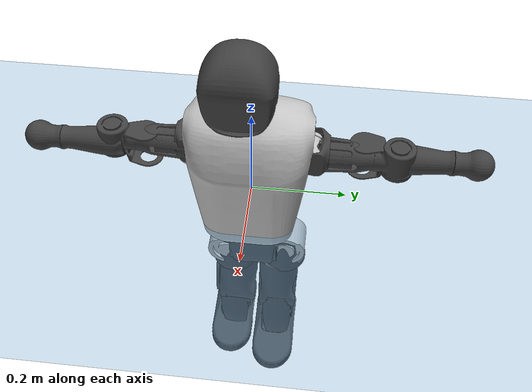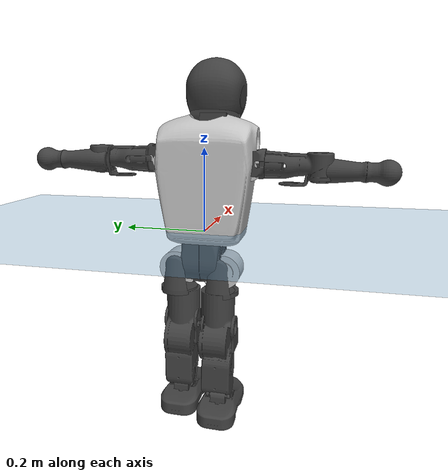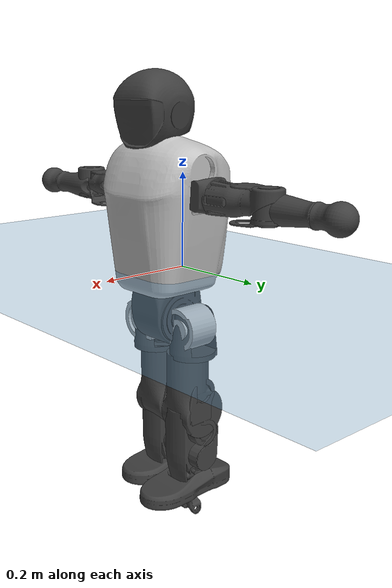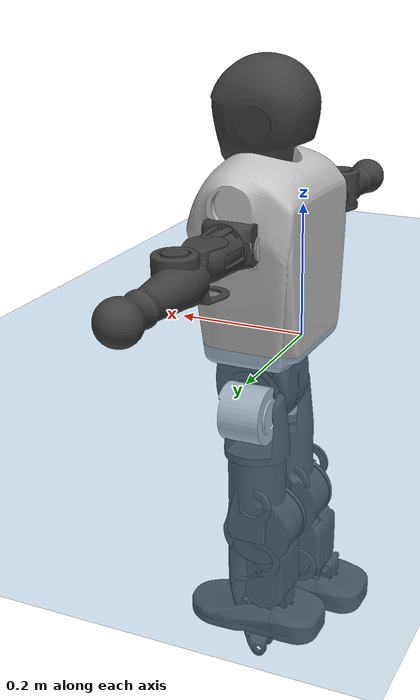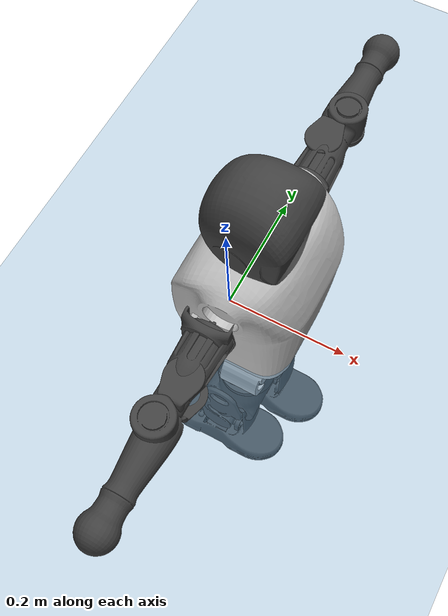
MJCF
<mujoco model="T1">
  <compiler angle="radian" assetdir="assets" balanceinertia="true" inertiafromgeom="false"/>

  <option timestep="0.005" density="1.2" viscosity="2e-05"/>

  <size nkey="1"/>

  <visual>
    <quality shadowsize="8192"/>
    <map shadowclip="0.5"/>
  </visual>

  <default>
    <default class="/">
      <joint armature="0.01" damping="0.01" frictionloss="0.1"/>
      <geom contype="0" conaffinity="0" group="1" solref="-1000 -80"/>
      <site size="0.01 0.005 0.005" group="5"/>
      <general forcelimited="true" biastype="affine" gainprm="25" biasprm="0 -25 -0.6"/>
      <default class="t1">
        <geom rgba="0.25 0.25 0.25 1"/>
        <default class="visual">
          <geom type="mesh" group="2"/>
        </default>
        <default class="collision">
          <geom group="3"/>
        </default>
        <default class="foot">
          <geom size="0.1115 0.05 0.015" type="box" condim="6" group="4" priority="1" solimp="0.015 1 0.015"/>
        </default>
        <default class="reward_collision_sphere">
          <geom group="5" rgba="1 0 0 1"/>
        </default>
      </default>
    </default>
  </default>

  <asset>
    <texture type="skybox" colorspace="auto" name="//unnamed_texture_0" builtin="gradient" rgb1="0.95 0.95 0.95" rgb2="0.95 0.95 0.95" width="100" height="600"/>
    <texture type="2d" colorspace="auto" name="texplane" builtin="checker" rgb1="0.345 0.575 0.748" rgb2="0.345 0.575 0.748" markrgb="1 1 1" width="512" height="512"/>
    <material name="MatPlane" class="/" texture="texplane" texuniform="true" texrepeat="2 2" specular="0.9"/>
    <mesh name="Trunk" class="/" file="Trunk.stl"/>
    <mesh name="H1" class="/" file="H1.stl"/>
    <mesh name="H2" class="/" file="H2.stl"/>
    <mesh name="AL1" class="/" file="AL1.stl"/>
    <mesh name="AL2" class="/" file="AL2.stl"/>
    <mesh name="AL3" class="/" file="AL3.stl"/>
    <mesh name="left_hand_link" class="/" file="left_hand_link.stl"/>
    <mesh name="AR1" class="/" file="AR1.stl"/>
    <mesh name="AR2" class="/" file="AR2.stl"/>
    <mesh name="AR3" class="/" file="AR3.stl"/>
    <mesh name="right_hand_link" class="/" file="right_hand_link.stl"/>
    <mesh name="Waist" class="/" file="Waist.stl"/>
    <mesh name="Hip_Pitch_Left" class="/" file="Hip_Pitch_Left.stl"/>
    <mesh name="Hip_Roll_Left" class="/" file="Hip_Roll_Left.stl"/>
    <mesh name="Hip_Yaw_Left" class="/" file="Hip_Yaw_Left.stl"/>
    <mesh name="Shank_Left" class="/" file="Shank_Left.stl"/>
    <mesh name="Ankle_Cross_Left" class="/" file="Ankle_Cross_Left.stl"/>
    <mesh name="left_foot_link" class="/" file="left_foot_link.stl"/>
    <mesh name="Hip_Pitch_Right" class="/" file="Hip_Pitch_Right.stl"/>
    <mesh name="Hip_Roll_Right" class="/" file="Hip_Roll_Right.stl"/>
    <mesh name="Hip_Yaw_Right" class="/" file="Hip_Yaw_Right.stl"/>
    <mesh name="Shank_Right" class="/" file="Shank_Right.stl"/>
    <mesh name="Ankle_Cross_Right" class="/" file="Ankle_Cross_Right.stl"/>
    <mesh name="right_foot_link" class="/" file="right_foot_link.stl"/>
  </asset>

  <worldbody>
    <geom name="floor" class="/" size="100 100 0.125" type="plane" group="0" material="MatPlane"/>
    <light name="toplight_shadow" class="/" pos="0 0 5" dir="0.0990148 0.0990148 -0.990148" type="directional" ambient="0.04 0.04 0.04" diffuse="0.55 0.55 0.55" specular="0.12 0.12 0.12"/>
    <light name="toplight_fill" class="/" pos="0 0 5" dir="0.0990148 0.0990148 -0.990148" type="directional" castshadow="false" ambient="0.04 0.04 0.04" diffuse="0.3 0.3 0.3" specular="0.08 0.08 0.08"/>
    <body name="trunk" childclass="t1" pos="-0.00131278 0.00492094 -0.00160434" quat="0.999986 0.00280238 0.00284738 -0.00351134">
      <inertial pos="0.0533228 0.00848592 0.0789622" quat="0.999956 -0.00231474 -0.00767151 -0.00478562" mass="4.65093" diaginertia="0.0355304 0.00634589 0.0115348"/>
      <joint name="//unnamed_joint_0" type="free" armature="0" damping="0" frictionloss="0"/>
      <geom name="//unnamed_geom_1" class="visual" rgba="0.76 0.76 0.76 1" mesh="Trunk"/>
      <geom name="//unnamed_geom_2" class="collision" size="0.0532407 0.0709876 0.106481" pos="0.0493943 0 0.0849727" type="box"/>
      <geom name="//unnamed_geom_3" class="reward_collision_sphere" size="0.0816358" pos="0.0493943 0 0.0708106"/>
      <geom name="//unnamed_geom_4" class="reward_collision_sphere" size="0.0106481" pos="0.0493943 0.0508542 0"/>
      <geom name="//unnamed_geom_5" class="reward_collision_sphere" size="0.0106481" pos="0.0493943 -0.0508542 0"/>
      <geom name="//unnamed_geom_6" class="reward_collision_sphere" size="0.0106481" pos="0.0493943 0.0640165 0.127459"/>
      <geom name="//unnamed_geom_7" class="reward_collision_sphere" size="0.0106481" pos="0.0493943 -0.0640165 0.127459"/>
      <site name="imu" pos="-0.0356879 -0.00656895 0.035839" size="0.00709876"/>
      <camera name="track" pos="0 -1.19657 0" quat="0.707107 0.707107 0 0" mode="trackcom"/>
      <camera name="ego_camera" pos="0.100435 0 0.297405" quat="-0.5 -0.5 0.5 0.5"/>
      <body name="H1" pos="0.0544074 -0.00465515 0.170293" quat="0.999998 0.00144223 -0.00060864 -0.00105619">
        <inertial pos="0.00492918 -0.0123013 0.0362294" quat="0.789658 0.0147692 0.0168167 0.613139" mass="0.166443" diaginertia="9.63051e-05 1.90449e-05 3.35169e-05"/>
        <joint name="AAHead_yaw" pos="0 0 0" axis="-0.049501 0.0172982 0.998624" range="-1.52886 1.58125" armature="0.00918994" damping="0.00395882" frictionloss="0.0665958"/>
        <geom name="//unnamed_geom_8" class="visual" mesh="H1"/>
        <body name="H2" pos="-0.00717544 -0.0107905 0.0479421" quat="1 -5.36454e-05 -0.000181463 -1.52688e-05">
          <inertial pos="0.00190566 -0.00925134 0.0728324" quat="0.988519 0.105106 -0.0735887 -0.0797973" mass="0.226455" diaginertia="0.000671297 0.000141676 0.000305894"/>
          <joint name="Head_pitch" pos="0 0 0" axis="-0.0155464 -0.999823 0.0106247" range="-1.24898 0.344244" armature="0.0109149" damping="0.00585058" frictionloss="0.0260484"/>
          <geom name="//unnamed_geom_9" class="visual" mesh="H2"/>
          <geom name="//unnamed_geom_10" class="collision" size="0.0567901" pos="0.00823238 0 0.0778917"/>
          <geom name="//unnamed_geom_11" class="reward_collision_sphere" size="0.0638889" pos="0.0164648 0 0.0708106"/>
        </body>
      </body>
      <body name="AL1" pos="0.0518473 0.0655833 0.166257" quat="1 -5.97886e-05 0.00041873 -2.61226e-05">
        <inertial pos="0.0103763 0.0274691 0.000803594" quat="0.506023 0.49367 -0.505287 0.494889" mass="0.18675" diaginertia="0.000530002 9.92259e-05 5.75455e-05"/>
        <joint name="Left_Shoulder_Pitch" pos="0 0 0" axis="0.00771291 0.998472 -0.0547157" range="-3.26199 1.32077" armature="0.00739304" damping="0.00872915" frictionloss="0.0763276"/>
        <geom name="//unnamed_geom_12" class="visual" rgba="0.76 0.76 0.76 1" mesh="AL1"/>
        <body name="AL2" pos="0.000964062 0.0303148 0.00718081" quat="1 -4.13593e-05 4.84553e-05 4.37255e-05">
          <inertial pos="-0.00188769 0.0277832 0.00902494" quat="0.517164 0.489073 -0.472804 0.519427" mass="0.0565692" diaginertia="0.00014933 2.62981e-05 3.07031e-05"/>
          <joint name="Left_Shoulder_Roll" pos="0 0 0" axis="-0.999724 0.00585928 0.0227396" stiffness="0.0028216" range="-1.60054 1.74114" armature="0.00620249" damping="0" frictionloss="0.0656201"/>
          <geom name="//unnamed_geom_13" class="visual" mesh="AL2"/>
          <body name="AL3" pos="0.000550204 0.0391543 -0.00370521" quat="1 -0.000222447 -0.000551752 -0.000463813">
            <inertial pos="0.0057582 0.0516554 0.00011323" quat="0.689804 0.722162 -0.0161566 0.0489054" mass="0.375068" diaginertia="0.00461274 0.000997864 0.000128938"/>
            <joint name="Left_Elbow_Pitch" pos="0 0 0" axis="0.00218651 -0.999992 -0.00348428" range="-2.22008 2.2744" armature="0.00729031" damping="0" frictionloss="0.0300345"/>
            <geom name="//unnamed_geom_14" class="visual" mesh="AL3"/>
            <geom name="//unnamed_geom_15" class="collision" size="0.0212963 0.0532407" pos="0 0.0299142 0" quat="0.707105 0.707108 0 0" type="cylinder"/>
            <geom name="//unnamed_geom_16" class="reward_collision_sphere" size="0.0255556"/>
            <body name="left_hand_link" pos="-0.00960262 0.0814478 -0.00649879" quat="1 0.000247345 0.000177627 -7.12983e-05">
              <inertial pos="-0.0098196 0.0726601 0.00968943" quat="0.71713 0.696932 -0.0025515 0.00187189" mass="0.116337" diaginertia="0.00309673 0.000586688 3.44084e-05"/>
              <joint name="Left_Elbow_Yaw" pos="0 0 0" axis="-0.000924086 0.00307366 0.999995" stiffness="0.0209202" range="-2.39034 0.0275824" armature="0.00452605" damping="0" frictionloss="0.0714488"/>
              <geom name="//unnamed_geom_17" class="visual" mesh="left_hand_link"/>
              <geom name="//unnamed_geom_18" class="collision" size="0.0212963 0.0621142" pos="0 0.077777 0" quat="0.707105 0.707108 0 0" type="cylinder"/>
              <geom name="//unnamed_geom_19" class="reward_collision_sphere" size="0.0354938"/>
              <geom name="//unnamed_geom_20" class="reward_collision_sphere" size="0.0248457" pos="0 0.0658113 0"/>
              <geom name="//unnamed_geom_21" class="reward_collision_sphere" size="0.0248457" pos="0 0.128631 0"/>
            </body>
          </body>
        </body>
      </body>
      <body name="AR1" pos="0.0429867 -0.063361 0.15647" quat="0.999981 0.0025703 -0.00342215 -0.00432664">
        <inertial pos="-0.00072256 -0.0231875 -0.00405226" quat="0.506384 0.4971 -0.497359 0.499099" mass="0.164535" diaginertia="0.000489548 8.44618e-05 4.57874e-05"/>
        <joint name="Right_Shoulder_Pitch" pos="0 0 0" axis="-0.00807857 -0.999967 0.000133235" stiffness="0.00245026" range="-1.35055 3.33385" armature="0.00805279" damping="0" frictionloss="0.0858654"/>
        <geom name="//unnamed_geom_22" class="visual" rgba="0.76 0.76 0.76 1" mesh="AR1"/>
        <body name="AR2" pos="-0.00377565 -0.0245879 0.0109651" quat="0.99999 0.00372927 0.00211142 -0.000854024">
          <inertial pos="0.00661103 -0.0260175 0.00274032" quat="0.516237 0.467467 -0.500078 0.51468" mass="0.0622249" diaginertia="0.000166111 2.69544e-05 3.36167e-05"/>
          <joint name="Right_Shoulder_Roll" pos="0 0 0" axis="-0.999292 0.00686493 0.0369852" stiffness="0.0325821" range="-1.65023 1.66487" armature="0.00707757" damping="0.0485096" frictionloss="0.0705264"/>
          <geom name="//unnamed_geom_23" class="visual" mesh="AR2"/>
          <body name="AR3" pos="0.00594001 -0.035236 -0.00367416" quat="0.999988 -0.00191945 -0.00395878 -0.00200909">
            <inertial pos="-0.0126216 -0.0495833 -0.00366764" quat="0.708534 0.705668 0.00324311 -0.00140946" mass="0.352499" diaginertia="0.00404814 0.000870813 0.000100224"/>
            <joint name="Right_Elbow_Pitch" pos="0 0 0" axis="-0.0273873 0.999625 -3.33482e-05" range="-2.20264 2.53019" armature="0.00701038" damping="0.00296525" frictionloss="0.0539667"/>
            <geom name="//unnamed_geom_24" class="visual" mesh="AR3"/>
            <geom name="//unnamed_geom_25" class="collision" size="0.0212963 0.0532407" pos="0 -0.0299142 0" quat="0.707105 0.707108 0 0" type="cylinder"/>
            <geom name="//unnamed_geom_26" class="reward_collision_sphere" size="0.0255556"/>
            <body name="right_hand_link" pos="0.0046526 -0.0813404 -0.00956793" quat="0.99999 -0.000457181 0.00143623 0.00412901">
              <inertial pos="-0.0115993 -0.0683682 0.0103477" quat="0.705188 0.708982 0.000313826 0.00733242" mass="0.131172" diaginertia="0.00412769 0.000777421 3.82073e-05"/>
              <joint name="Right_Elbow_Yaw" pos="0 0 0" axis="-0.00107418 -0.00387494 0.999992" stiffness="0.0012166" range="0.0210634 2.63344" armature="0.0080787" damping="0" frictionloss="0.074566"/>
              <geom name="//unnamed_geom_27" class="visual" mesh="right_hand_link"/>
              <geom name="//unnamed_geom_28" class="collision" size="0.0212963 0.0621142" pos="0 -0.077777 0" quat="0.707105 0.707108 0 0" type="cylinder"/>
              <geom name="//unnamed_geom_29" class="reward_collision_sphere" size="0.0354938"/>
              <geom name="//unnamed_geom_30" class="reward_collision_sphere" size="0.0248457" pos="0 -0.0658113 0"/>
              <geom name="//unnamed_geom_31" class="reward_collision_sphere" size="0.0248457" pos="0 -0.128631 0"/>
            </body>
          </body>
        </body>
      </body>
      <body name="Waist" pos="0.0595916 0.00977322 -0.0868355" quat="0.999997 0.00185477 -0.000670379 0.00139179">
        <inertial pos="0.000891747 -0.00842362 0.00539883" quat="0.979296 0.0256871 -0.200107 -0.0166298" mass="1.10599" diaginertia="0.00224929 0.000467897 0.00100125"/>
        <joint name="Waist" pos="0 0 0" axis="-0.0155283 -0.00280003 0.999876" stiffness="0.0187081" range="-1.48458 1.64376" armature="0.00756304" damping="0.0631168" frictionloss="0.0503384"/>
        <geom name="//unnamed_geom_32" class="visual" mesh="Waist"/>
        <body name="Hip_Pitch_Left" pos="-0.00568084 0.0655124 0.00248078" quat="1 8.76955e-05 0.000523455 7.10729e-05">
          <inertial pos="0.0046947 -0.00436342 -0.00278386" quat="0.97644 0.21447 0.0218368 -0.0095114" mass="0.389819" diaginertia="0.00072332 0.000117548 0.000236795"/>
          <joint name="Left_Hip_Pitch" pos="0 0 0" axis="0.0141399 0.999831 0.0117837" range="-1.81114 1.38074" armature="0.00796239" damping="0.043395" frictionloss="0.0766078"/>
          <geom name="//unnamed_geom_33" class="visual" rgba="0.76 0.76 0.76 1" mesh="Hip_Pitch_Left"/>
          <body name="Hip_Roll_Left" pos="-0.010197 -0.00239686 -0.00782867" quat="1 0.000111251 -8.04931e-05 0.000103956">
            <inertial pos="0.00231864 0.000526914 -0.0290888" quat="0.707056 -0.00680859 -0.0059154 0.7071" mass="0.117143" diaginertia="0.000517826 0.00011429 9.12212e-05"/>
            <joint name="Left_Hip_Roll" pos="0 0 0" axis="-0.999788 0.0183212 -0.00943279" stiffness="0.049932" range="-1.49059 -0.0118201" armature="0.00733968" damping="0" frictionloss="0.0723432"/>
            <geom name="//unnamed_geom_34" class="visual" mesh="Hip_Roll_Left"/>
            <geom name="//unnamed_geom_35" class="reward_collision_sphere" size="0.0390432"/>
            <body name="Hip_Yaw_Left" pos="0.00307339 -0.01136 -0.0701314" quat="1 0.000776792 0.0002312 0.00036533">
              <inertial pos="-0.000441939 -0.00132491 -0.0663503" quat="0.716912 -0.0584333 -0.00422927 0.694698" mass="0.803676" diaginertia="0.00882379 0.00208038 0.00040703"/>
              <joint name="Left_Hip_Yaw" pos="0 0 0" axis="0.0026343 0.000944468 -0.999996" range="-1.00675 0.751077" armature="0.00474639" damping="0.0734099" frictionloss="0.0758307"/>
              <geom name="//unnamed_geom_36" class="visual" mesh="Hip_Yaw_Left"/>
              <geom name="//unnamed_geom_37" class="collision" size="0.0354938 0.0567901" type="cylinder"/>
              <body name="Shank_Left" pos="-0.00740311 -0.000613613 -0.0849439" quat="0.999997 -0.000845083 7.5981e-05 0.00207402">
                <inertial pos="-0.00118522 -0.000342276 -0.0790325" quat="0.997401 0.00533871 -0.0268067 0.0666588" mass="0.58573" diaginertia="0.0125529 0.00297556 0.000386545"/>
                <joint name="Left_Knee_Pitch" pos="0 0 0" axis="-0.00381841 0.999983 0.0045012" range="-0.114548 2.35128" armature="0.00688971" damping="0.0113403" frictionloss="0.0791329"/>
                <geom name="//unnamed_geom_38" class="visual" mesh="Shank_Left"/>
                <geom name="//unnamed_geom_39" class="collision" size="0.0354938 0.0532407" pos="0 0 -0.0849727" type="cylinder"/>
                <geom name="//unnamed_geom_40" class="reward_collision_sphere" size="0.046142"/>
                <body name="Ankle_Cross_Left" pos="0.00219451 0.00019208 -0.189975" quat="1 -0.000674828 0.000149845 -0.000211619">
                  <inertial pos="0.00757558 -0.0106434 -0.00466612" quat="0.444136 0.554307 0.551774 0.437072" mass="0.0291483" diaginertia="1.04304e-05 2.28171e-06 2.09348e-06"/>
                  <joint name="Left_Ankle_Pitch" pos="0 0 0" axis="-0.00363547 0.999035 0.0437641" range="-0.740019 0.32324" armature="0.0105861" damping="0" frictionloss="0.0506082"/>
                  <geom name="//unnamed_geom_41" class="visual" mesh="Ankle_Cross_Left"/>
                  <body name="left_foot_link" pos="0.00145943 -0.00641301 -0.0176228" quat="0.999983 6.3107e-05 0.00581389 -0.000660095">
                    <inertial pos="0.0103585 0.00205147 -0.00306823" quat="-0.00139148 0.620854 0.0268718 0.783464" mass="0.260797" diaginertia="0.000934818 0.000177458 0.00034299"/>
                    <joint name="Left_Ankle_Roll" pos="0 0 0" axis="-0.999984 -0.00418866 0.00374898" stiffness="0.0465084" range="-0.240195 0.65532" armature="0.00490354" damping="0" frictionloss="0.108067"/>
                    <geom name="//unnamed_geom_42" class="visual" mesh="left_foot_link"/>
                    <geom name="left_foot" class="foot" size="0.0900567 0.0442494 0.0100617" pos="0.00823238 0 -0.0106216"/>
                    <geom name="//unnamed_geom_44" class="reward_collision_sphere" size="0.0369136" pos="0.00823238 0 -0.0106216"/>
                    <geom name="//unnamed_geom_45" class="reward_collision_sphere" size="0.0212963" pos="0.0782077 -0.0137605 -0.0106216"/>
                    <geom name="//unnamed_geom_46" class="reward_collision_sphere" size="0.0212963" pos="-0.0576267 -0.0137605 -0.0106216"/>
                    <site name="left_foot" class="foot" pos="0.00823238 0 -0.0106216" size="0.00709876"/>
                  </body>
                </body>
              </body>
            </body>
          </body>
        </body>
        <body name="Hip_Pitch_Right" pos="0.00117803 -0.0558518 -0.00187642" quat="0.999988 -0.00424639 -0.000246835 -0.00227993">
          <inertial pos="-0.00364004 0.0124385 -0.0189779" quat="0.973752 -0.227112 0.0146982 -0.0033692" mass="0.364123" diaginertia="0.00064367 9.824e-05 0.00020228"/>
          <joint name="Right_Hip_Pitch" pos="0 0 0" axis="0.000993259 -0.999984 -0.00562247" range="-1.50411 1.80256" armature="0.00429537" damping="0.00803985" frictionloss="0.08496"/>
          <geom name="//unnamed_geom_47" class="visual" rgba="0.76 0.76 0.76 1" mesh="Hip_Pitch_Right"/>
          <body name="Hip_Roll_Right" pos="-0.0112395 0.00929778 -0.00722335" quat="1 -3.58001e-05 -7.77043e-05 -3.67065e-05">
            <inertial pos="-0.00193926 -0.00342998 -0.0454711" quat="0.709966 -0.00148163 -0.00720593 0.704198" mass="0.110779" diaginertia="0.000613188 9.70401e-05 8.33746e-05"/>
            <joint name="Right_Hip_Roll" pos="0 0 0" axis="-0.999806 0.014071 0.0137789" range="-0.201865 1.80766" armature="0.00728143" damping="0.0606873" frictionloss="0.110776"/>
            <geom name="//unnamed_geom_48" class="visual" mesh="Hip_Roll_Right"/>
            <geom name="//unnamed_geom_49" class="reward_collision_sphere" size="0.0390432"/>
            <body name="Hip_Yaw_Right" pos="-0.010734 0.00449549 -0.0640729" quat="0.999993 0.000315819 0.000275523 -0.00360956">
              <inertial pos="-0.00566778 0.00674864 -0.0700114" quat="0.710947 -0.0558705 0.023912 0.700615" mass="0.741776" diaginertia="0.0111915 0.00180434 0.000529485"/>
              <joint name="Right_Hip_Yaw" pos="0 0 0" axis="-0.0111526 0.0609994 -0.998075" range="-1.05004 0.967942" armature="0.0103801" damping="0" frictionloss="0.0735509"/>
              <geom name="//unnamed_geom_50" class="visual" mesh="Hip_Yaw_Right"/>
              <geom name="//unnamed_geom_51" class="collision" size="0.0354938 0.0567901" type="cylinder"/>
              <body name="Shank_Right" pos="-0.022479 -0.00942719 -0.0920801" quat="0.999995 0.000805211 -0.00280877 0.00102513">
                <inertial pos="-0.0100117 0.00185435 -0.0882991" quat="0.998821 0.026418 -0.0379056 0.0148825" mass="0.70429" diaginertia="0.0124384 0.00274619 0.000337341"/>
                <joint name="Right_Knee_Pitch" pos="0 0 0" axis="0.00339836 -0.999333 -0.0363725" stiffness="0.0567558" range="-2.37143 -0.13723" armature="0.00730542" damping="0" frictionloss="0.0671632"/>
                <geom name="//unnamed_geom_52" class="visual" mesh="Shank_Right"/>
                <geom name="//unnamed_geom_53" class="collision" size="0.0354938 0.0532407" pos="0 0 -0.0849727" type="cylinder"/>
                <geom name="//unnamed_geom_54" class="reward_collision_sphere" size="0.046142"/>
                <body name="Ankle_Cross_Right" pos="-0.00252421 -0.00809836 -0.190443" quat="0.999989 0.00191457 -0.000186847 0.00430867">
                  <inertial pos="-0.0039412 -0.00841879 -0.00789547" quat="0.444807 0.551016 0.551202 0.441252" mass="0.0264561" diaginertia="1.27056e-05 1.94449e-06 2.21539e-06"/>
                  <joint name="Right_Ankle_Pitch" pos="0 0 0" axis="-0.0356011 -0.999365 -0.00111233" range="-0.0950269 0.833588" armature="0.00805345" damping="0" frictionloss="0.0717983"/>
                  <geom name="//unnamed_geom_55" class="visual" mesh="Ankle_Cross_Right"/>
                  <body name="right_foot_link" pos="-0.00814474 -0.00126095 -0.0120979" quat="1 -0.000139978 -0.000103242 0.000843425">
                    <inertial pos="-0.00047609 -0.00841523 -0.00549107" quat="0.0101375 0.622535 0.0216643 0.782226" mass="0.182898" diaginertia="0.000925836 0.000164237 0.000333942"/>
                    <joint name="Right_Ankle_Roll" pos="0 0 0" axis="-0.999963 0.000153395 0.00855323" range="-0.428399 0.552945" armature="0.0070592" damping="0" frictionloss="0.1122"/>
                    <geom name="//unnamed_geom_56" class="visual" mesh="right_foot_link"/>
                    <geom name="right_foot" class="foot" size="0.106328 0.0326966 0.0108502" pos="0.00823238 0 -0.0106216"/>
                    <geom name="//unnamed_geom_58" class="reward_collision_sphere" size="0.0283951"/>
                    <geom name="//unnamed_geom_59" class="reward_collision_sphere" size="0.0212963" pos="0.00823238 0 -0.0106216"/>
                    <geom name="//unnamed_geom_60" class="reward_collision_sphere" size="0.0212963" pos="0.0782077 0.0137605 -0.0106216"/>
                    <geom name="//unnamed_geom_61" class="reward_collision_sphere" size="0.0212963" pos="-0.0576267 0.0137605 -0.0106216"/>
                    <site name="right_foot" class="foot" pos="0.00823238 0 -0.0106216" size="0.00709876"/>
                  </body>
                </body>
              </body>
            </body>
          </body>
        </body>
      </body>
    </body>
  </worldbody>

  <contact>
    <pair class="/" geom1="floor" geom2="left_foot" name="//unnamed_contact_0"/>
    <pair class="/" geom1="floor" geom2="right_foot" name="//unnamed_contact_1"/>
  </contact>

  <actuator>
    <general name="AAHead_yaw" class="/" joint="AAHead_yaw" forcerange="-5.43982 5.43982" gainprm="23.022" biasprm="0 -23.022 -0.366848"/>
    <general name="Head_pitch" class="/" joint="Head_pitch" forcerange="-4.50434 4.50434" gainprm="23.022" biasprm="0 -23.022 -0.366848"/>
    <general name="Left_Shoulder_Pitch" class="/" joint="Left_Shoulder_Pitch" forcerange="-18.9102 18.9102" gainprm="23.022" biasprm="0 -23.022 -0.366848"/>
    <general name="Left_Shoulder_Roll" class="/" joint="Left_Shoulder_Roll" forcerange="-11.8394 11.8394" gainprm="23.022" biasprm="0 -23.022 -0.366848"/>
    <general name="Left_Elbow_Pitch" class="/" joint="Left_Elbow_Pitch" forcerange="-15.1107 15.1107" gainprm="23.022" biasprm="0 -23.022 -0.366848"/>
    <general name="Left_Elbow_Yaw" class="/" joint="Left_Elbow_Yaw" forcerange="-12.2204 12.2204" gainprm="23.022" biasprm="0 -23.022 -0.366848"/>
    <general name="Right_Shoulder_Pitch" class="/" joint="Right_Shoulder_Pitch" forcerange="-13.2122 13.2122" gainprm="23.022" biasprm="0 -23.022 -0.366848"/>
    <general name="Right_Shoulder_Roll" class="/" joint="Right_Shoulder_Roll" forcerange="-13.4866 13.4866" gainprm="23.022" biasprm="0 -23.022 -0.366848"/>
    <general name="Right_Elbow_Pitch" class="/" joint="Right_Elbow_Pitch" forcerange="-15.4393 15.4393" gainprm="23.022" biasprm="0 -23.022 -0.366848"/>
    <general name="Right_Elbow_Yaw" class="/" joint="Right_Elbow_Yaw" forcerange="-15.378 15.378" gainprm="23.022" biasprm="0 -23.022 -0.366848"/>
    <general name="Waist" class="/" joint="Waist" forcerange="-25.6027 25.6027" gainprm="23.022" biasprm="0 -23.022 -0.366848"/>
    <general name="Left_Hip_Pitch" class="/" joint="Left_Hip_Pitch" forcerange="-30.6861 30.6861" gainprm="23.022" biasprm="0 -23.022 -0.366848"/>
    <general name="Left_Hip_Roll" class="/" joint="Left_Hip_Roll" forcerange="-25.3119 25.3119" gainprm="23.022" biasprm="0 -23.022 -0.366848"/>
    <general name="Left_Hip_Yaw" class="/" joint="Left_Hip_Yaw" forcerange="-25.4479 25.4479" gainprm="23.022" biasprm="0 -23.022 -0.366848"/>
    <general name="Left_Knee_Pitch" class="/" joint="Left_Knee_Pitch" forcerange="-36.3156 36.3156" gainprm="23.022" biasprm="0 -23.022 -0.366848"/>
    <general name="Left_Ankle_Pitch" class="/" joint="Left_Ankle_Pitch" forcerange="-8.22407 8.22407" gainprm="23.022" biasprm="0 -23.022 -0.366848"/>
    <general name="Left_Ankle_Roll" class="/" joint="Left_Ankle_Roll" forcerange="-14.6156 14.6156" gainprm="23.022" biasprm="0 -23.022 -0.366848"/>
    <general name="Right_Hip_Pitch" class="/" joint="Right_Hip_Pitch" forcerange="-33.7187 33.7187" gainprm="23.022" biasprm="0 -23.022 -0.366848"/>
    <general name="Right_Hip_Roll" class="/" joint="Right_Hip_Roll" forcerange="-13.2815 13.2815" gainprm="23.022" biasprm="0 -23.022 -0.366848"/>
    <general name="Right_Hip_Yaw" class="/" joint="Right_Hip_Yaw" forcerange="-27.6244 27.6244" gainprm="23.022" biasprm="0 -23.022 -0.366848"/>
    <general name="Right_Knee_Pitch" class="/" joint="Right_Knee_Pitch" forcerange="-53.4873 53.4873" gainprm="23.022" biasprm="0 -23.022 -0.366848"/>
    <general name="Right_Ankle_Pitch" class="/" joint="Right_Ankle_Pitch" forcerange="-13.4601 13.4601" gainprm="23.022" biasprm="0 -23.022 -0.366848"/>
    <general name="Right_Ankle_Roll" class="/" joint="Right_Ankle_Roll" forcerange="-7.06806 7.06806" gainprm="23.022" biasprm="0 -23.022 -0.366848"/>
  </actuator>

  <sensor>
    <gyro site="imu" name="imu_angular_velocity"/>
    <velocimeter site="imu" name="imu_linear_velocity"/>
    <framelinvel objtype="site" objname="left_foot" name="left_foot_global_linear_velocity"/>
    <framelinvel objtype="site" objname="right_foot" name="right_foot_global_linear_velocity"/>
  </sensor>

  <keyframe>
    <key name="home" qpos="0 0 0.6385 1 0 0 0 0 0 0 1.4 0 -0.4 0 -1.4 0 0.4 0 -0.4 0 0 0.8 -0.4 0 0.4 0 0 -0.8 0.4 0"/>
  </keyframe>
</mujoco>
